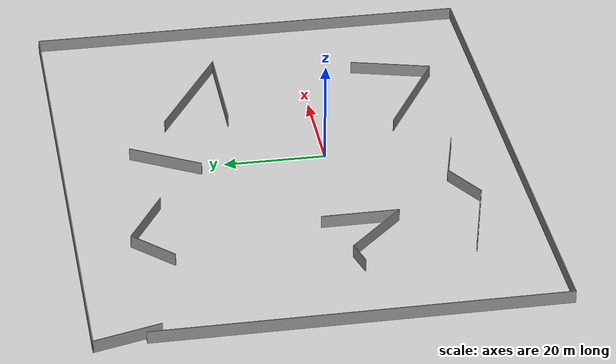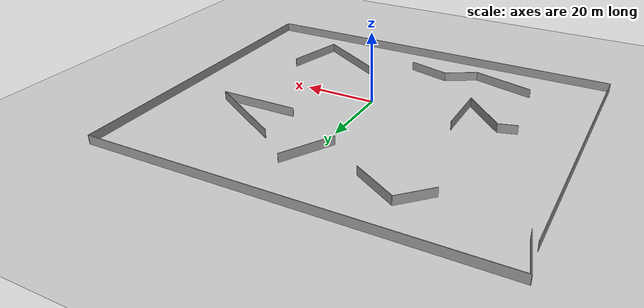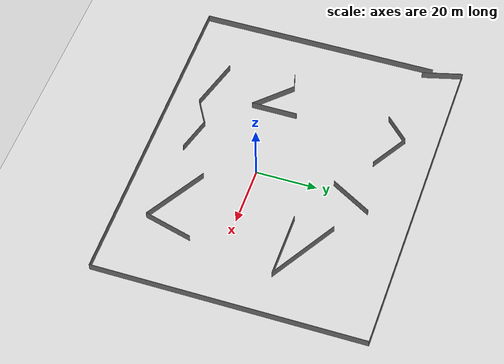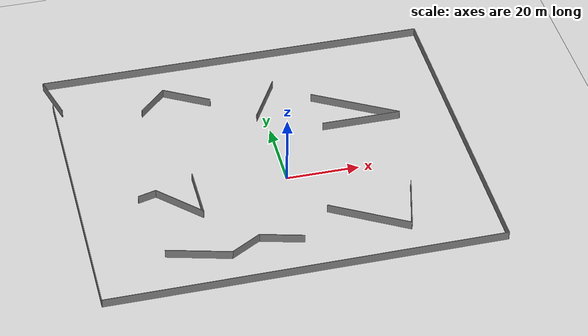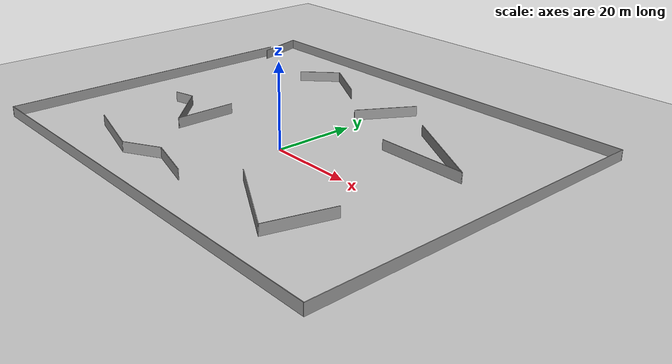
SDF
<sdf version="1.7">
 <world name="default">
  <light name="sun" type="directional">
   <pose>0 0 10 0 -0 0</pose>
   <diffuse>0.8 0.8 0.8 1</diffuse>
   <specular>0.2 0.2 0.2 1</specular>
   <attenuation>
    <range>1000</range>
    <constant>0.9</constant>
    <linear>0.01</linear>
    <quadratic>0.001</quadratic>
   </attenuation>
   <direction>-0.5 0.1 -0.9</direction>
   <spot><inner_angle>0</inner_angle><outer_angle>0</outer_angle><falloff>0</falloff></spot>
  </light>
  <model name="ground_plane">
   <static>1</static>
   <link name="link">
    <collision name="collision">
     <geometry><plane><normal>0 0 1</normal><size>100 100</size></plane></geometry>
     <surface><friction><ode><mu>100</mu><mu2>50</mu2></ode></friction></surface>
    </collision>
    <visual name="visual">
     <cast_shadows>0</cast_shadows>
     <geometry><plane><normal>0 0 1</normal><size>100 100</size></plane></geometry>
     <material>
      <script><uri>file://media/materials/scripts/gazebo.material</uri><name>Gazebo/Grey</name></script>
     </material>
    </visual>
   </link>
  </model>
  <gravity>0 0 -9.8</gravity>
  <magnetic_field>6e-06 2.3e-05 -4.2e-05</magnetic_field>
  <atmosphere type="adiabatic"/>
  <physics type="ode">
   <max_step_size>0.001</max_step_size>
   <real_time_factor>1</real_time_factor>
   <real_time_update_rate>1000</real_time_update_rate>
  </physics>
  <scene><ambient>0.4 0.4 0.4 1</ambient><background>0.7 0.7 0.7 1</background><shadows>1</shadows></scene>
  <audio><device>default</device></audio>
  <spherical_coordinates>
   <surface_model>EARTH_WGS84</surface_model>
   <latitude_deg>0</latitude_deg>
   <longitude_deg>0</longitude_deg>
   <elevation>0</elevation>
   <heading_deg>0</heading_deg>
  </spherical_coordinates>
  <model name="Untitled5">
   <pose>-3.71409 7.84564 0 0 -0 0</pose>
   <link name="Wall_0">
    <collision name="Wall_0_Collision">
     <geometry><box><size>15 0.15 2.5</size></box></geometry>
     <pose>0 0 1.25 0 -0 0</pose>
    </collision>
    <visual name="Wall_0_Visual">
     <pose>0 0 1.25 0 -0 0</pose>
     <geometry><box><size>15 0.15 2.5</size></box></geometry>
     <material>
      <script><uri>file://media/materials/scripts/gazebo.material</uri><name>Gazebo/Grey</name></script>
      <ambient>1 1 1 1</ambient>
     </material>
     <meta><layer>0</layer></meta>
    </visual>
    <pose>-21.2115 -10.1869 0 0 -0 -1.5708</pose>
   </link>
   <link name="Wall_1">
    <collision name="Wall_1_Collision">
     <geometry><box><size>15.25 0.15 2.5</size></box></geometry>
     <pose>0 0 1.25 0 -0 0</pose>
    </collision>
    <visual name="Wall_1_Visual">
     <pose>0 0 1.25 0 -0 0</pose>
     <geometry><box><size>15.25 0.15 2.5</size></box></geometry>
     <material>
      <script><uri>file://media/materials/scripts/gazebo.material</uri><name>Gazebo/Grey</name></script>
      <ambient>1 1 1 1</ambient>
     </material>
     <meta><layer>0</layer></meta>
    </visual>
    <pose>-26.5502 -12.2732 0 0 -0 2.35619</pose>
   </link>
   <link name="Wall_10">
    <collision name="Wall_10_Collision">
     <geometry><box><size>13.25 0.15 2.5</size></box></geometry>
     <pose>0 0 1.25 0 -0 0</pose>
    </collision>
    <visual name="Wall_10_Visual">
     <pose>0 0 1.25 0 -0 0</pose>
     <geometry><box><size>13.25 0.15 2.5</size></box></geometry>
     <material>
      <script><uri>file://media/materials/scripts/gazebo.material</uri><name>Gazebo/Grey</name></script>
      <ambient>1 1 1 1</ambient>
     </material>
     <meta><layer>0</layer></meta>
    </visual>
    <pose>-52.4713 37.4648 0 0 -0 -1.309</pose>
   </link>
   <link name="Wall_12">
    <collision name="Wall_12_Collision">
     <geometry><box><size>25.5 0.15 2.5</size></box></geometry>
     <pose>0 0 1.25 0 -0 0</pose>
    </collision>
    <visual name="Wall_12_Visual">
     <pose>0 0 1.25 0 -0 0</pose>
     <geometry><box><size>25.5 0.15 2.5</size></box></geometry>
     <material>
      <script><uri>file://media/materials/scripts/gazebo.material</uri><name>Gazebo/Grey</name></script>
      <ambient>1 1 1 1</ambient>
     </material>
     <meta><layer>0</layer></meta>
    </visual>
    <pose>28.8781 15.6132 0 0 -0 -0.523599</pose>
   </link>
   <link name="Wall_13">
    <collision name="Wall_13_Collision">
     <geometry><box><size>22 0.15 2.5</size></box></geometry>
     <pose>0 0 1.25 0 -0 0</pose>
    </collision>
    <visual name="Wall_13_Visual">
     <pose>0 0 1.25 0 -0 0</pose>
     <geometry><box><size>22 0.15 2.5</size></box></geometry>
     <material>
      <script><uri>file://media/materials/scripts/gazebo.material</uri><name>Gazebo/Grey</name></script>
      <ambient>1 1 1 1</ambient>
     </material>
     <meta><layer>0</layer></meta>
    </visual>
    <pose>28.93 9.27573 0 0 -0 3.14159</pose>
   </link>
   <link name="Wall_15">
    <collision name="Wall_15_Collision">
     <geometry><box><size>23 0.15 2.5</size></box></geometry>
     <pose>0 0 1.25 0 -0 0</pose>
    </collision>
    <visual name="Wall_15_Visual">
     <pose>0 0 1.25 0 -0 0</pose>
     <geometry><box><size>23 0.15 2.5</size></box></geometry>
     <material>
      <script><uri>file://media/materials/scripts/gazebo.material</uri><name>Gazebo/Grey</name></script>
      <ambient>1 1 1 1</ambient>
     </material>
     <meta><layer>0</layer></meta>
    </visual>
    <pose>20.8865 -28.6706 0 0 -0 -0.523599</pose>
   </link>
   <link name="Wall_16">
    <collision name="Wall_16_Collision">
     <geometry><box><size>16.25 0.15 2.5</size></box></geometry>
     <pose>0 0 1.25 0 -0 0</pose>
    </collision>
    <visual name="Wall_16_Visual">
     <pose>0 0 1.25 0 -0 0</pose>
     <geometry><box><size>16.25 0.15 2.5</size></box></geometry>
     <material>
      <script><uri>file://media/materials/scripts/gazebo.material</uri><name>Gazebo/Grey</name></script>
      <ambient>1 1 1 1</ambient>
     </material>
     <meta><layer>0</layer></meta>
    </visual>
    <pose>32.8644 -26.6074 0 0 -0 1.309</pose>
   </link>
   <link name="Wall_18">
    <collision name="Wall_18_Collision">
     <geometry><box><size>10.5 0.15 2.5</size></box></geometry>
     <pose>0 0 1.25 0 -0 0</pose>
    </collision>
    <visual name="Wall_18_Visual">
     <pose>0 0 1.25 0 -0 0</pose>
     <geometry><box><size>10.5 0.15 2.5</size></box></geometry>
     <material>
      <script><uri>file://media/materials/scripts/gazebo.material</uri><name>Gazebo/Grey</name></script>
      <ambient>1 1 1 1</ambient>
     </material>
     <meta><layer>0</layer></meta>
    </visual>
    <pose>-25.6514 29.6403 0 0 -0 0.785398</pose>
   </link>
   <link name="Wall_19">
    <collision name="Wall_19_Collision">
     <geometry><box><size>14 0.15 2.5</size></box></geometry>
     <pose>0 0 1.25 0 -0 0</pose>
    </collision>
    <visual name="Wall_19_Visual">
     <pose>0 0 1.25 0 -0 0</pose>
     <geometry><box><size>14 0.15 2.5</size></box></geometry>
     <material>
      <script><uri>file://media/materials/scripts/gazebo.material</uri><name>Gazebo/Grey</name></script>
      <ambient>1 1 1 1</ambient>
     </material>
     <meta><layer>0</layer></meta>
    </visual>
    <pose>-15.9949 29.8371 0 0 -0 -0.523599</pose>
   </link>
   <link name="Wall_2">
    <collision name="Wall_2_Collision">
     <geometry><box><size>5.25 0.15 2.5</size></box></geometry>
     <pose>0 0 1.25 0 -0 0</pose>
    </collision>
    <visual name="Wall_2_Visual">
     <pose>0 0 1.25 0 -0 0</pose>
     <geometry><box><size>5.25 0.15 2.5</size></box></geometry>
     <material>
      <script><uri>file://media/materials/scripts/gazebo.material</uri><name>Gazebo/Grey</name></script>
      <ambient>1 1 1 1</ambient>
     </material>
     <meta><layer>0</layer></meta>
    </visual>
    <pose>-34.3519 -7.59456 0 0 -0 -2.87979</pose>
   </link>
   <link name="Wall_21">
    <collision name="Wall_21_Collision">
     <geometry><box><size>17.5 0.15 2.5</size></box></geometry>
     <pose>0 0 1.25 0 -0 0</pose>
    </collision>
    <visual name="Wall_21_Visual">
     <pose>0 0 1.25 0 -0 0</pose>
     <geometry><box><size>17.5 0.15 2.5</size></box></geometry>
     <material>
      <script><uri>file://media/materials/scripts/gazebo.material</uri><name>Gazebo/Grey</name></script>
      <ambient>1 1 1 1</ambient>
     </material>
     <meta><layer>0</layer></meta>
    </visual>
    <pose>-25.5373 -32.1124 0 0 -0 -0.261799</pose>
   </link>
   <link name="Wall_22">
    <collision name="Wall_22_Collision">
     <geometry><box><size>9.5 0.15 2.5</size></box></geometry>
     <pose>0 0 1.25 0 -0 0</pose>
    </collision>
    <visual name="Wall_22_Visual">
     <pose>0 0 1.25 0 -0 0</pose>
     <geometry><box><size>9.5 0.15 2.5</size></box></geometry>
     <material>
      <script><uri>file://media/materials/scripts/gazebo.material</uri><name>Gazebo/Grey</name></script>
      <ambient>1 1 1 1</ambient>
     </material>
     <meta><layer>0</layer></meta>
    </visual>
    <pose>-13.1092 -32.0202 0 0 -0 0.523599</pose>
   </link>
   <link name="Wall_23">
    <collision name="Wall_23_Collision">
     <geometry><box><size>12 0.15 2.5</size></box></geometry>
     <pose>0 0 1.25 0 -0 0</pose>
    </collision>
    <visual name="Wall_23_Visual">
     <pose>0 0 1.25 0 -0 0</pose>
     <geometry><box><size>12 0.15 2.5</size></box></geometry>
     <material>
      <script><uri>file://media/materials/scripts/gazebo.material</uri><name>Gazebo/Grey</name></script>
      <ambient>1 1 1 1</ambient>
     </material>
     <meta><layer>0</layer></meta>
    </visual>
    <pose>-3.33741 -31.2162 0 0 -0 -0.261799</pose>
   </link>
   <link name="Wall_25">
    <collision name="Wall_25_Collision">
     <geometry><box><size>15.25 0.15 2.5</size></box></geometry>
     <pose>0 0 1.25 0 -0 0</pose>
    </collision>
    <visual name="Wall_25_Visual">
     <pose>0 0 1.25 0 -0 0</pose>
     <geometry><box><size>15.25 0.15 2.5</size></box></geometry>
     <material>
      <script><uri>file://media/materials/scripts/gazebo.material</uri><name>Gazebo/Grey</name></script>
      <ambient>1 1 1 1</ambient>
     </material>
     <meta><layer>0</layer></meta>
    </visual>
    <pose>4.91416 23.4728 0 0 -0 -2.0944</pose>
   </link>
   <link name="Wall_6">
    <collision name="Wall_6_Collision">
     <geometry><box><size>78 0.15 2.5</size></box></geometry>
     <pose>0 0 1.25 0 -0 0</pose>
    </collision>
    <visual name="Wall_6_Visual">
     <pose>0 0 1.25 0 -0 0</pose>
     <geometry><box><size>78 0.15 2.5</size></box></geometry>
     <material>
      <script><uri>file://media/materials/scripts/gazebo.material</uri><name>Gazebo/Grey</name></script>
      <ambient>1 1 1 1</ambient>
     </material>
     <meta><layer>0</layer></meta>
    </visual>
    <pose>-52.9166 -4.88343 0 0 -0 -1.5708</pose>
   </link>
   <link name="Wall_7">
    <collision name="Wall_7_Collision">
     <geometry><box><size>107.25 0.15 2.5</size></box></geometry>
     <pose>0 0 1.25 0 -0 0</pose>
    </collision>
    <visual name="Wall_7_Visual">
     <pose>0 0 1.25 0 -0 0</pose>
     <geometry><box><size>107.25 0.15 2.5</size></box></geometry>
     <material>
      <script><uri>file://media/materials/scripts/gazebo.material</uri><name>Gazebo/Grey</name></script>
      <ambient>1 1 1 1</ambient>
     </material>
     <meta><layer>0</layer></meta>
    </visual>
    <pose>0.633426 -43.8084 0 0 -0 0</pose>
   </link>
   <link name="Wall_8">
    <collision name="Wall_8_Collision">
     <geometry><box><size>87.75 0.15 2.5</size></box></geometry>
     <pose>0 0 1.25 0 -0 0</pose>
    </collision>
    <visual name="Wall_8_Visual">
     <pose>0 0 1.25 0 -0 0</pose>
     <geometry><box><size>87.75 0.15 2.5</size></box></geometry>
     <material>
      <script><uri>file://media/materials/scripts/gazebo.material</uri><name>Gazebo/Grey</name></script>
      <ambient>1 1 1 1</ambient>
     </material>
     <meta><layer>0</layer></meta>
    </visual>
    <pose>54.1834 -0.008426 0 0 -0 1.5708</pose>
   </link>
   <link name="Wall_9">
    <collision name="Wall_9_Collision">
     <geometry><box><size>108.5 0.15 2.5</size></box></geometry>
     <pose>0 0 1.25 0 -0 0</pose>
    </collision>
    <visual name="Wall_9_Visual">
     <pose>0 0 1.25 0 -0 0</pose>
     <geometry><box><size>108.5 0.15 2.5</size></box></geometry>
     <material>
      <script><uri>file://media/materials/scripts/gazebo.material</uri><name>Gazebo/Grey</name></script>
      <ambient>1 1 1 1</ambient>
     </material>
     <meta><layer>0</layer></meta>
    </visual>
    <pose>0.008426 43.7916 0 0 -0 3.14159</pose>
   </link>
   <static>1</static>
  </model>
 </world>
</sdf>
